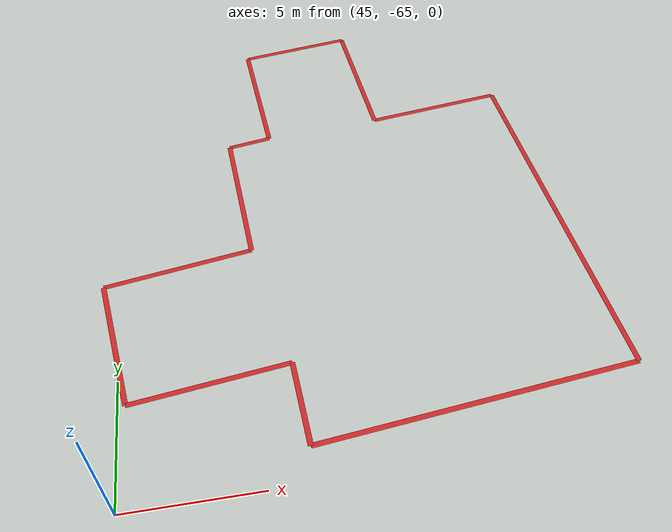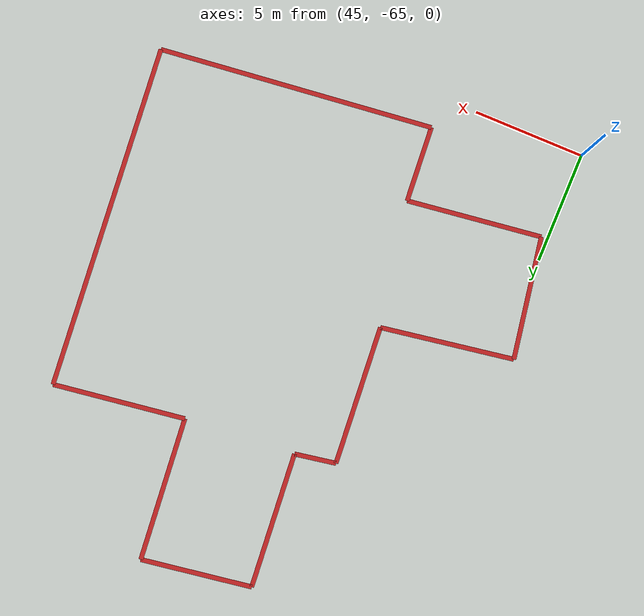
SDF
<sdf version="1.4">
 <world name="default">
  <include><uri>model://sun</uri></include>
  <model name="President's House">
   <static>true</static>
   <pose>53.58331149262828 -52.19817419002547 0.0 0 0 0</pose>
   <link name="President's House_0">
    <collision name="President's House_0">
     <geometry><box><size>15.475143812544966 0.2 0</size></box></geometry>
    </collision>
    <visual name="President's House_0">
     <geometry><box><size>15.475143812544966 0.2 0</size></box></geometry>
     <material>
      <script><uri>file://media/materials/scripts/gazebo.material</uri><name>Gazebo/Red</name></script>
     </material>
    </visual>
    <pose>9.592290137162976 -2.332162736316292 0 0 0 1.6650718159180202</pose>
   </link>
   <link name="President's House_1">
    <collision name="President's House_1">
     <geometry><box><size>12.420041905299907 0.2 0</size></box></geometry>
    </collision>
    <visual name="President's House_1">
     <geometry><box><size>12.420041905299907 0.2 0</size></box></geometry>
     <material>
      <script><uri>file://media/materials/scripts/gazebo.material</uri><name>Gazebo/Red</name></script>
     </material>
    </visual>
    <pose>4.149360863456025 -10.727661942391975 0 0 0 0.11171123097035161</pose>
   </link>
   <link name="President's House_2">
    <collision name="President's House_2">
     <geometry><box><size>3.4201013517765557 0.2 0</size></box></geometry>
    </collision>
    <visual name="President's House_2">
     <geometry><box><size>3.4201013517765557 0.2 0</size></box></geometry>
     <material>
      <script><uri>file://media/materials/scripts/gazebo.material</uri><name>Gazebo/Red</name></script>
     </material>
    </visual>
    <pose>-2.149840076689074 -9.714687219363334 0 0 0 -1.495940131858904</pose>
   </link>
   <link name="President's House_3">
    <collision name="President's House_3">
     <geometry><box><size>6.078782774064744 0.2 0</size></box></geometry>
    </collision>
    <visual name="President's House_3">
     <geometry><box><size>6.078782774064744 0.2 0</size></box></geometry>
     <material>
      <script><uri>file://media/materials/scripts/gazebo.material</uri><name>Gazebo/Red</name></script>
     </material>
    </visual>
    <pose>-5.291107725287901 -8.406219227129618 0 0 0 0.13092413299408304</pose>
   </link>
   <link name="President's House_4">
    <collision name="President's House_4">
     <geometry><box><size>5.504191082136553 0.2 0</size></box></geometry>
    </collision>
    <visual name="President's House_4">
     <geometry><box><size>5.504191082136553 0.2 0</size></box></geometry>
     <material>
      <script><uri>file://media/materials/scripts/gazebo.material</uri><name>Gazebo/Red</name></script>
     </material>
    </visual>
    <pose>-8.760407487603914 -6.088944822198741 0 0 0 -1.404366033510363</pose>
   </link>
   <link name="President's House_5">
    <collision name="President's House_5">
     <geometry><box><size>5.971391826745336 0.2 0</size></box></geometry>
    </collision>
    <visual name="President's House_5">
     <geometry><box><size>5.971391826745336 0.2 0</size></box></geometry>
     <material>
      <script><uri>file://media/materials/scripts/gazebo.material</uri><name>Gazebo/Red</name></script>
     </material>
    </visual>
    <pose>-6.269665985354777 -2.8936664345414016 0 0 0 -2.9797147353626126</pose>
   </link>
   <link name="President's House_6">
    <collision name="President's House_6">
     <geometry><box><size>6.206355874636193 0.2 0</size></box></geometry>
    </collision>
    <visual name="President's House_6">
     <geometry><box><size>6.206355874636193 0.2 0</size></box></geometry>
     <material>
      <script><uri>file://media/materials/scripts/gazebo.material</uri><name>Gazebo/Red</name></script>
     </material>
    </visual>
    <pose>-3.5620945368303722 0.6814973428817765 0 0 0 -1.4936728975841946</pose>
   </link>
   <link name="President's House_7">
    <collision name="President's House_7">
     <geometry><box><size>1.8406470404480435 0.2 0</size></box></geometry>
    </collision>
    <visual name="President's House_7">
     <geometry><box><size>1.8406470404480435 0.2 0</size></box></geometry>
     <material>
      <script><uri>file://media/materials/scripts/gazebo.material</uri><name>Gazebo/Red</name></script>
     </material>
    </visual>
    <pose>-2.8949474659747167 3.9358528817781675 0 0 0 -2.966409369846677</pose>
   </link>
   <link name="President's House_8">
    <collision name="President's House_8">
     <geometry><box><size>5.997771046637297 0.2 0</size></box></geometry>
    </collision>
    <visual name="President's House_8">
     <geometry><box><size>5.997771046637297 0.2 0</size></box></geometry>
     <material>
      <script><uri>file://media/materials/scripts/gazebo.material</uri><name>Gazebo/Red</name></script>
     </material>
    </visual>
    <pose>-2.2389165816849683 7.084684313823246 0 0 0 -1.487265987389361</pose>
   </link>
   <link name="President's House_9">
    <collision name="President's House_9">
     <geometry><box><size>4.930551719106037 0.2 0</size></box></geometry>
    </collision>
    <visual name="President's House_9">
     <geometry><box><size>4.930551719106037 0.2 0</size></box></geometry>
     <material>
      <script><uri>file://media/materials/scripts/gazebo.material</uri><name>Gazebo/Red</name></script>
     </material>
    </visual>
    <pose>-0.0539565722061397 10.457233643977496 0 0 0 -2.985143110456578</pose>
   </link>
   <link name="President's House_10">
    <collision name="President's House_10">
     <geometry><box><size>6.344080420048689 0.2 0</size></box></geometry>
    </collision>
    <visual name="President's House_10">
     <geometry><box><size>6.344080420048689 0.2 0</size></box></geometry>
     <material>
      <script><uri>file://media/materials/scripts/gazebo.material</uri><name>Gazebo/Red</name></script>
     </material>
    </visual>
    <pose>2.6870151239810696 7.684088435293745 0 0 0 1.6673526860360703</pose>
   </link>
   <link name="President's House_11">
    <collision name="President's House_11">
     <geometry><box><size>5.931473442908504 0.2 0</size></box></geometry>
    </collision>
    <visual name="President's House_11">
     <geometry><box><size>5.931473442908504 0.2 0</size></box></geometry>
     <material>
      <script><uri>file://media/materials/scripts/gazebo.material</uri><name>Gazebo/Red</name></script>
     </material>
    </visual>
    <pose>5.928363463703235 4.948936392427726 0 0 0 -2.9987777816759014</pose>
   </link>
  </model>
 </world>
</sdf>
